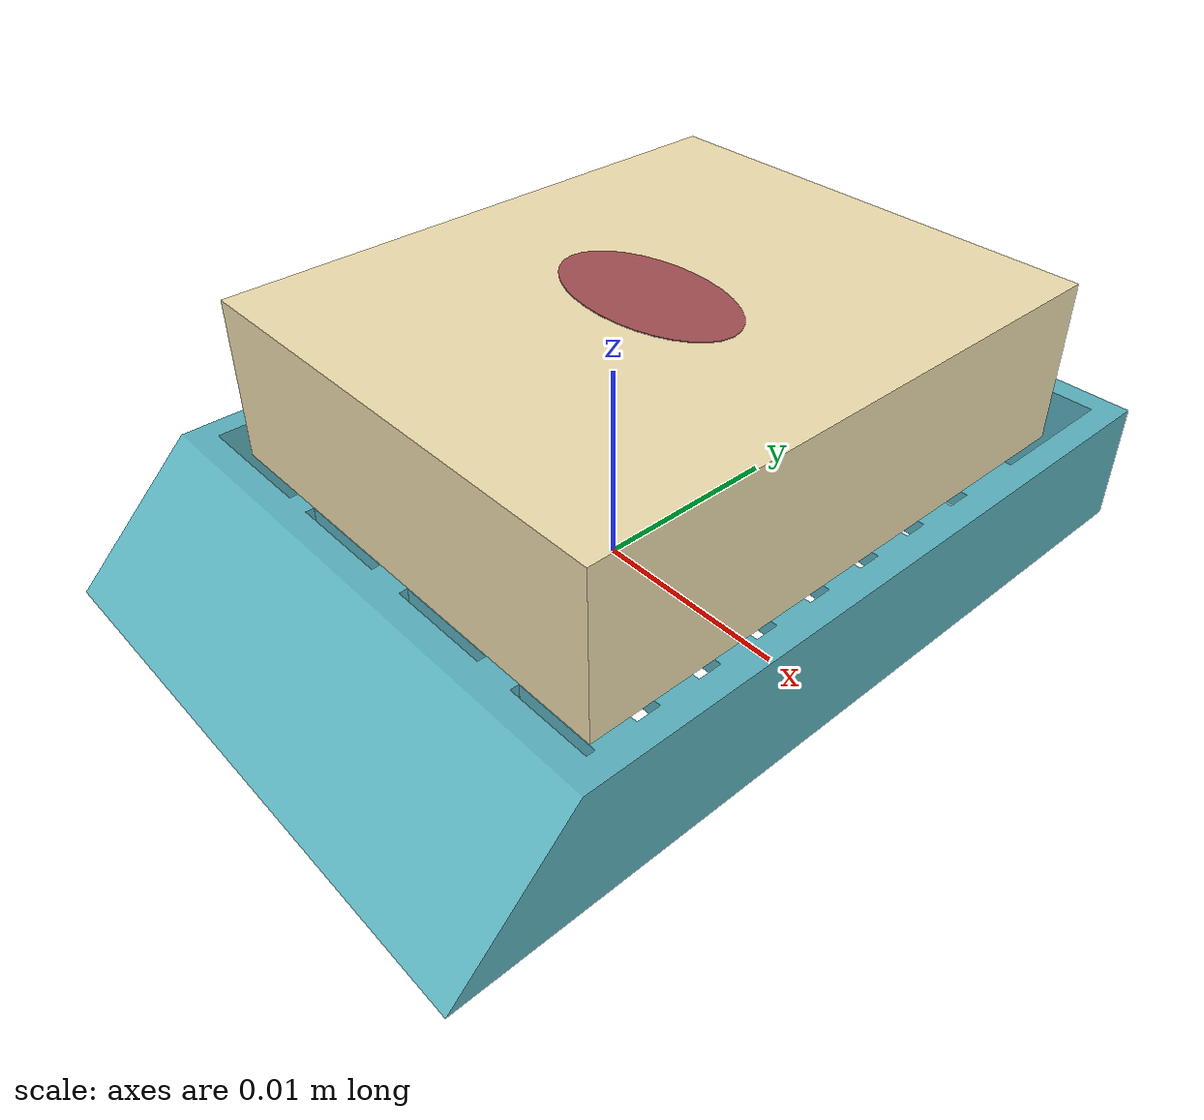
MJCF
<?xml version='1.0' encoding='utf-8'?>
<mujoco model="Embedded cassette block | static asset inspection">
  <compiler angle="radian" />
  <visual>
    <global offwidth="1000" offheight="600" />
    <headlight ambient=".4 .4 .4" diffuse=".6 .6 .6" />
  </visual>
  <asset>
    <texture type="skybox" builtin="gradient" rgb1=".92 .95 .97" rgb2=".70 .78 .84" width="512" height="3072" />
    <mesh name="cassette_block_0" file="meshes/cassette_block_0.obj" inertia="shell" />
    <mesh name="cassette_block_1" file="meshes/cassette_block_1.obj" inertia="shell" />
    <mesh name="cassette_block_2" file="meshes/cassette_block_2.obj" inertia="shell" />
  </asset>
  <worldbody>
    <geom type="mesh" mesh="cassette_block_0" rgba="0.352941176 0.694117647 0.745098039 1" contype="0" conaffinity="0" density="0" />
    <geom type="mesh" mesh="cassette_block_1" rgba="0.937254902 0.870588235 0.68627451 1" contype="0" conaffinity="0" density="0" />
    <geom type="mesh" mesh="cassette_block_2" rgba="0.62745098 0.305882353 0.317647059 1" contype="0" conaffinity="0" density="0" />
  </worldbody>
</mujoco>
